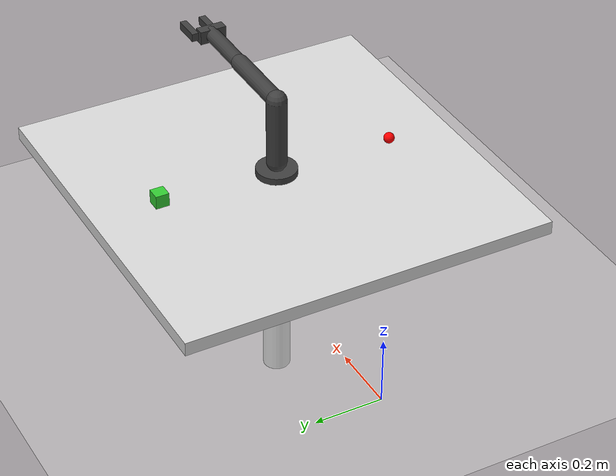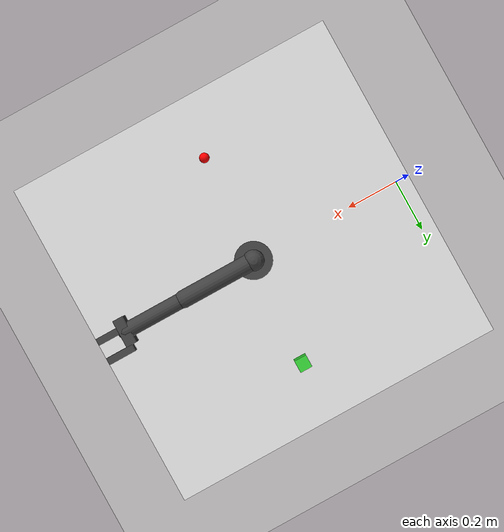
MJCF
<mujoco model="pickplace_arm">
  <compiler angle="radian" coordinate="local" inertiafromgeom="true"/>
  <option timestep="0.002" gravity="0 0 -9.81" integrator="RK4" cone="elliptic"/>
  <size njmax="1000" nconmax="400"/>

  <default>
    <joint damping="2" armature="0.02" limited="true"/>
    <geom condim="6" density="600" friction="1 0.005 0.0001" solref="0.005 1" solimp="0.95 0.99 0.001"/>

  </default>

  <contact>
    <exclude body1="base"  body2="link1"/>
    <exclude body1="link1" body2="link2"/>
    <exclude body1="link2" body2="link3"/>
    <exclude body1="link3" body2="finger_left"/>
    <exclude body1="link3" body2="finger_right"/>
    <exclude body1="link3" body2="wrist"/>
    <exclude body1="wrist" body2="gripper"/>

  </contact>

  <worldbody>
    <light pos="0 0 2" dir="0 0 -1" diffuse="1 1 1"/>
    <geom name="floor" type="plane" size="3 3 0.1" rgba="0.95 0.95 0.95 1"/>

    <body name="table" pos="0.60 0 0.35">
      <geom name="table_top" type="box" size="0.55 0.55 0.02" rgba="0.85 0.85 0.85 1"/>
      <geom name="table_leg" type="cylinder" size="0.04 0.33" pos="0 0 -0.33" rgba="0.7 0.7 0.7 1"/>
    </body>

    <body name="base" pos="0.60 0 0.38">
      <geom name="base_geom" type="cylinder" size="0.06 0.01" rgba="0.25 0.25 0.25 1"
            contype="0" conaffinity="0"/>

      <joint name="j1_yaw" type="hinge" axis="0 0 1" range="-3.14159 3.14159"/>

      <body name="link1" pos="0 0 0.03">
        <geom name="l1" type="capsule" fromto="0 0 0  0 0 0.20" size="0.03" rgba="0.25 0.25 0.25 1"/>

        <joint name="j2_pitch" type="hinge" axis="0 1 0" range="-1.5708 1.5708"/>

        <body name="link2" pos="0 0 0.20">
          <geom name="l2" type="capsule" fromto="0 0 0  0.22 0 0" size="0.025" rgba="0.25 0.25 0.25 1"/>

          <joint name="j3_pitch" type="hinge" axis="0 1 0" range="-1.5708 1.5708"/>

          <body name="link3" pos="0.22 0 0">
            <joint name="j4_pitch" type="hinge" axis="0 1 0" range="-1.5708 1.5708"/>
            <geom name="l3" type="capsule" fromto="0 0 0  0.18 0 0" size="0.022" rgba="0.25 0.25 0.25 1"/>

            <site name="ee_site" pos="0.18 0 0" size="0.01" rgba="1 0 0 1"/>

            <body name="wrist" pos="0.18 0 0">
  <joint name="j_wrist_pitch" type="hinge" axis="0 1 0" range="-1.2 1.2"/>
  <site name="wrist_axis" pos="0 0 0" quat="1 0 0 0" size="0.01" rgba="0 0 1 1"/>

  <body name="gripper" pos="0 0 0">
    <geom name="grip_base" type="box" size="0.015 0.04 0.02" rgba="0.25 0.25 0.25 1"/>

    <body name="finger_left" pos="0.04 0.03 0">
      <joint name="j_finger_left" type="slide" axis="0 1 0" range="-0.04 0.04"/>
      <geom name="fingerL" type="box" size="0.04 0.010 0.012" pos="0 0.020 0"
            rgba="0.25 0.25 0.25 1" friction="2 0.01 0.001"/>
    </body>

    <body name="finger_right" pos="0.04 0.01 0">
      <joint name="j_finger_right" type="slide" axis="0 -1 0" range="-0.04 0.04"/>
      <geom name="fingerR" type="box" size="0.04 0.010 0.012" pos="0 -0.020 0"
            rgba="0.25 0.25 0.25 1" friction="10 0.01 0.001"/>
    </body>

    <site name="grasp_site" pos="0 0 0" size="0.008" rgba="0 0.7 0 1"/>
  </body>
</body>

          </body>
        </body>
      </body>
    </body>

    <body name="cube" pos="0.62 0.35 0.39">
      <freejoint name="cube_free"/>
      <geom name="cube_geom" type="box" size="0.02 0.02 0.02"
          rgba="0.2 0.8 0.2 1"
          friction="6 0.05 0.005"
          solref="0.005 1"
          solimp="0.95 0.99 0.001"/>
    </body>

    <site name="target_site" pos="0.58 -0.35 0.39" size="0.016" rgba="1 0 0 1"/>
  </worldbody>

  <actuator>
    <position name="a_j1" joint="j1_yaw"   kp="120" ctrlrange="-3.14159 3.14159" dampratio="1"/>
    <position name="a_j2" joint="j2_pitch" kp="220" ctrlrange="-1.5708 1.5708"   dampratio="1"/>
    <position name="a_j3" joint="j3_pitch" kp="200" ctrlrange="-1.5708 1.5708"   dampratio="1"/>
    <position name="a_j4" joint="j4_pitch" kp="180" ctrlrange="-1.5708 1.5708"   dampratio="1"/>

    <position name="a_fL" joint="j_finger_left"  kp="1200" ctrlrange="-0.04 0" forcerange="-200 200"/>
    <position name="a_fR" joint="j_finger_right" kp="1200" ctrlrange="0 0.04"  forcerange="-200 200"/>
    <position name="a_wrist" joint="j_wrist_pitch" kp="160" ctrlrange="-1.2 1.2"/>

  </actuator>
</mujoco>
